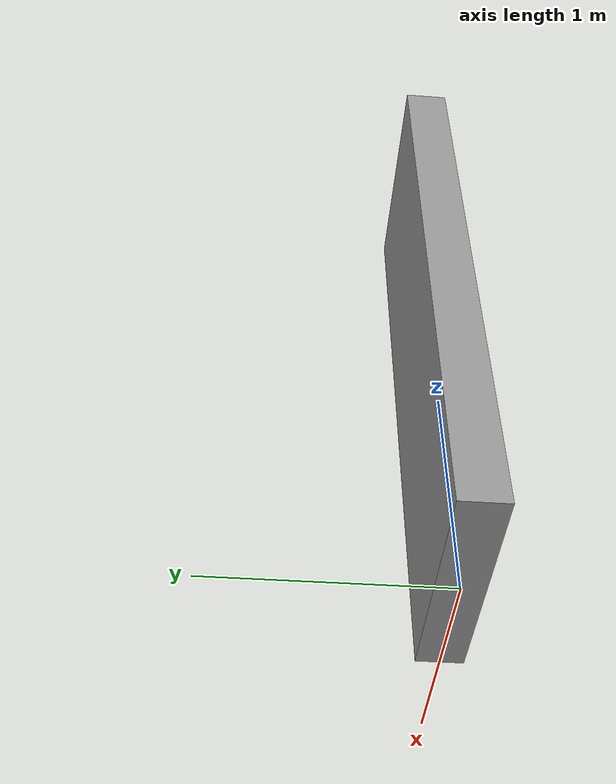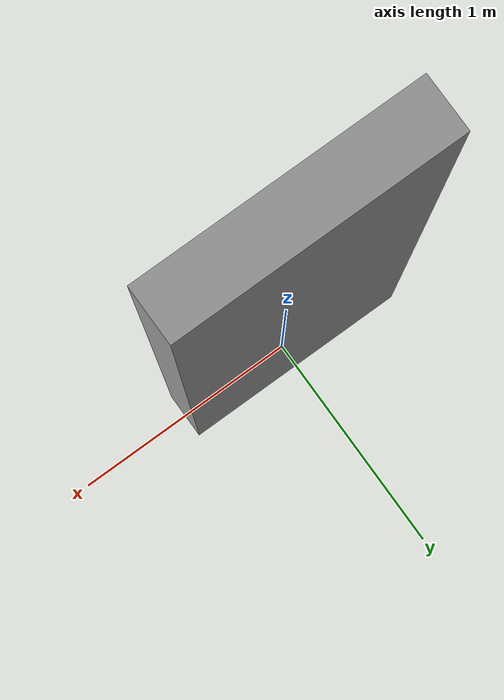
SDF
<?xml version="1.0" ?>
<sdf version="1.4">
  <model name="grey_wall_tinier">
    <static>true</static>
    <link name="link">
      <pose>0 0 1.4 0 0 0</pose>
      <collision name="collision">
        <geometry>
          <box>
            <size>1.0 0.2 2.8</size>
          </box>
        </geometry>
      </collision>
      <visual name="visual">
        <cast_shadows>false</cast_shadows>
        <geometry>
          <box>
            <size>1.0 0.2 2.8</size>
          </box>
        </geometry>
        <material>
          <script>
            <uri>model://grey_wall_tinier/materials/scripts</uri>
            <uri>model://grey_wall_tinier/materials/textures</uri>
            <name>vrc/grey_wall_tinier</name>
          </script>
        </material>
      </visual>
    </link>
  </model>
</sdf>
